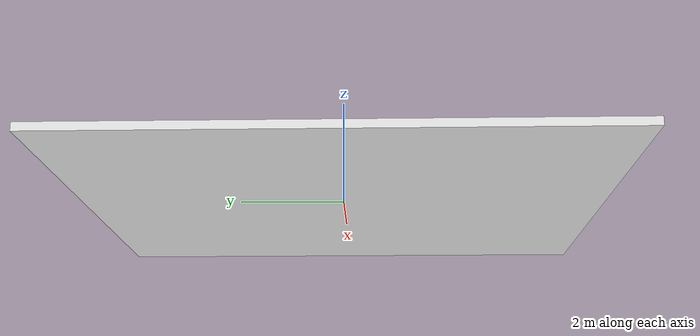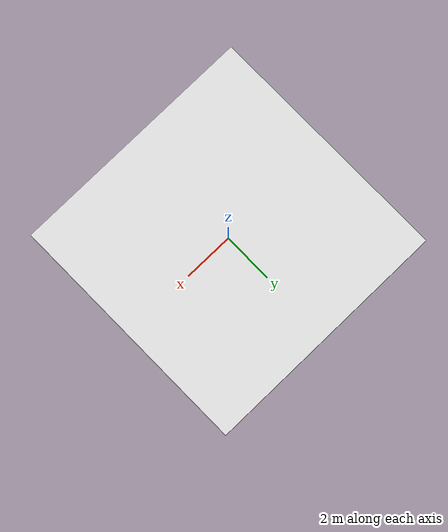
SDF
<?xml version="1.0" ?>
<sdf version="1.5">
  <model name="challenge_1_start">
    <static>true</static>
    <link name="link">
      <collision name="collision">
        <geometry>
          <box>
            <size>10 10 .15</size>
          </box>
        </geometry>
      </collision>
      <visual name="visual">
        <cast_shadows>false</cast_shadows>
        <geometry>
          <box>
            <size>10 10 .15</size>
          </box>
        </geometry>
        <material>
          <script>
            <uri>file://media/materials/scripts/gazebo.material</uri>
            <name>Gazebo/White</name>
          </script>
        </material>
      </visual>
    </link>
  </model>
</sdf>
